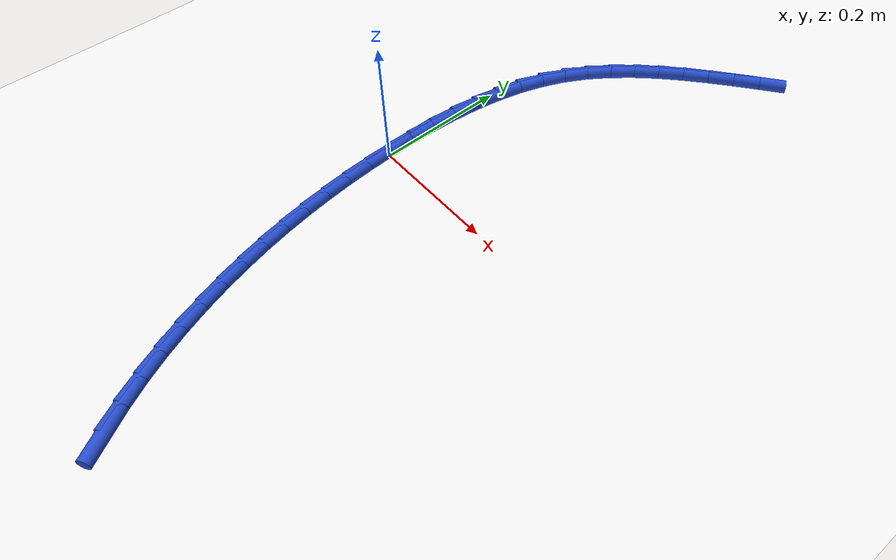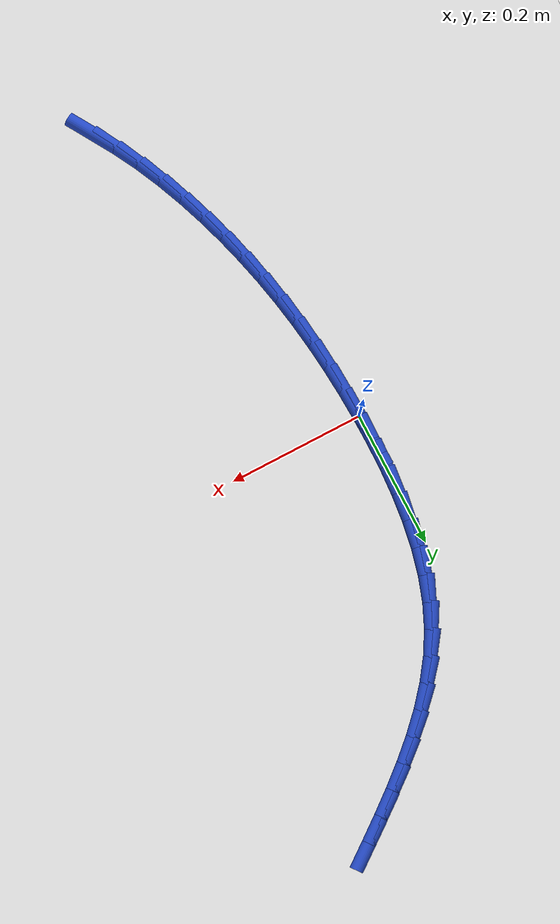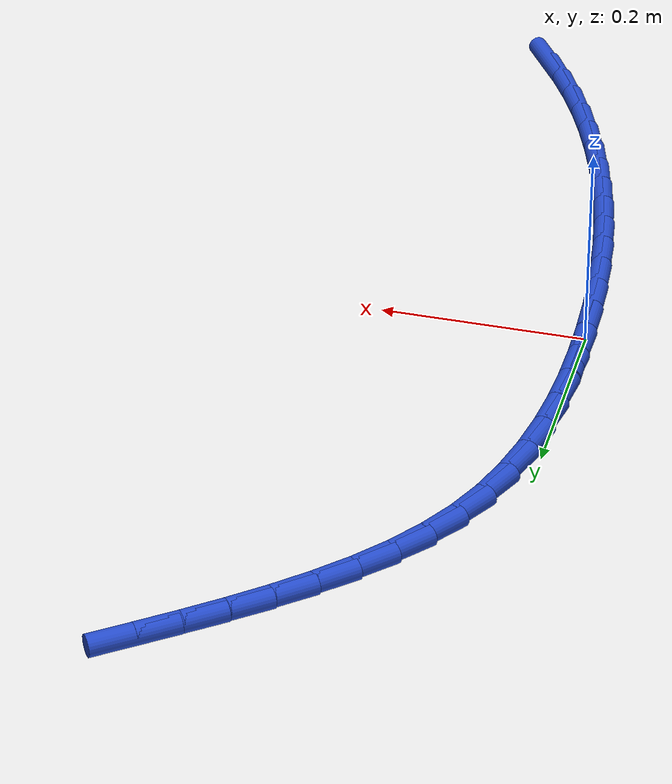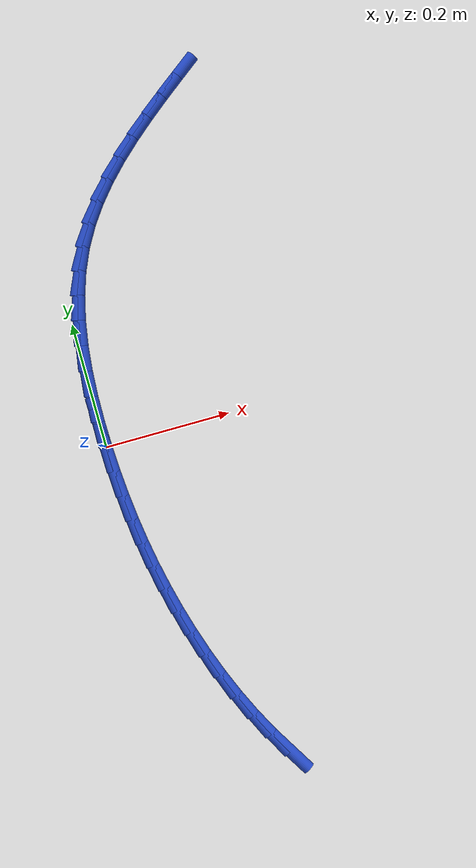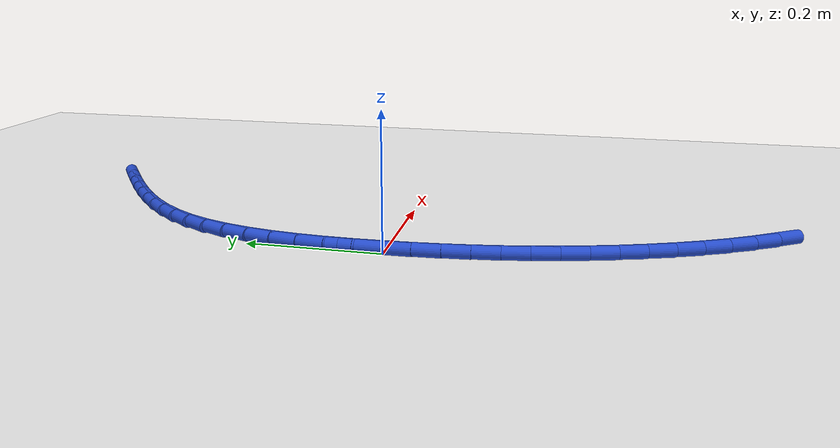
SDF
<sdf version="1.6">
 <world name="default">
  <model name="ground_plane">
   <static>1</static>
   <link name="link">
    <collision name="collision">
     <geometry><plane><normal>0 0 1</normal><size>100 100</size></plane></geometry>
     <surface><friction><ode><mu>100</mu><mu2>50</mu2></ode></friction></surface>
    </collision>
    <visual name="visual">
     <cast_shadows>0</cast_shadows>
     <geometry><plane><normal>0 0 1</normal><size>100 100</size></plane></geometry>
     <material>
      <script><uri>file://media/materials/scripts/gazebo.material</uri><name>Gazebo/WhiteGlow</name></script>
     </material>
    </visual>
   </link>
  </model>
  <model name="line">
   <link name="link_0">
    <pose>-1.1275702593849246e-17 -2.7755575615628914e-17 0.01 0 1.57 -1.5521794826872468</pose>
    <collision name="collision">
     <geometry><cylinder><radius>0.01</radius><length>0.08</length></cylinder></geometry>
    </collision>
    <visual name="visual">
     <material>
      <script><name>Gazebo/Blue</name><uri>file://media/materials/scripts/gazebo.material</uri></script>
     </material>
     <geometry><cylinder><radius>0.01</radius><length>0.08</length></cylinder></geometry>
    </visual>
   </link>
   <link name="link_1">
    <pose>-0.0007580148216579398 0.04071190812936072 0.01 0 1.57 1.555061172492371</pose>
    <collision name="collision">
     <geometry><cylinder><radius>0.01</radius><length>0.08</length></cylinder></geometry>
    </collision>
    <visual name="visual">
     <material>
      <script><name>Gazebo/Blue</name><uri>file://media/materials/scripts/gazebo.material</uri></script>
     </material>
     <geometry><cylinder><radius>0.01</radius><length>0.08</length></cylinder></geometry>
    </visual>
   </link>
   <link name="link_2">
    <pose>-0.00011463356133103357 0.08159667784541513 0.01 0 1.57 1.5131589727793138</pose>
    <collision name="collision">
     <geometry><cylinder><radius>0.01</radius><length>0.08</length></cylinder></geometry>
    </collision>
    <visual name="visual">
     <material>
      <script><name>Gazebo/Blue</name><uri>file://media/materials/scripts/gazebo.material</uri></script>
     </material>
     <geometry><cylinder><radius>0.01</radius><length>0.08</length></cylinder></geometry>
    </visual>
   </link>
   <link name="link_3">
    <pose>0.0022349338899343447 0.122316192299354 0.01 0 1.57 1.4627905685262999</pose>
    <collision name="collision">
     <geometry><cylinder><radius>0.01</radius><length>0.08</length></cylinder></geometry>
    </collision>
    <visual name="visual">
     <material>
      <script><name>Gazebo/Blue</name><uri>file://media/materials/scripts/gazebo.material</uri></script>
     </material>
     <geometry><cylinder><radius>0.01</radius><length>0.08</length></cylinder></geometry>
    </visual>
   </link>
   <link name="link_4">
    <pose>0.006595477641091835 0.16253233464236805 0.01 0 1.57 1.4028352260410355</pose>
    <collision name="collision">
     <geometry><cylinder><radius>0.01</radius><length>0.08</length></cylinder></geometry>
    </collision>
    <visual name="visual">
     <material>
      <script><name>Gazebo/Blue</name><uri>file://media/materials/scripts/gazebo.material</uri></script>
     </material>
     <geometry><cylinder><radius>0.01</radius><length>0.08</length></cylinder></geometry>
    </visual>
   </link>
   <link name="link_5">
    <pose>0.013271787801095069 0.20190698802564813 0.01 0 1.57 1.3320342615172331</pose>
    <collision name="collision">
     <geometry><cylinder><radius>0.01</radius><length>0.08</length></cylinder></geometry>
    </collision>
    <visual name="visual">
     <material>
      <script><name>Gazebo/Blue</name><uri>file://media/materials/scripts/gazebo.material</uri></script>
     </material>
     <geometry><cylinder><radius>0.01</radius><length>0.08</length></cylinder></geometry>
    </visual>
   </link>
   <link name="link_6">
    <pose>0.02256865447889768 0.24010203560038498 0.01 0 1.57 1.2491331722972696</pose>
    <collision name="collision">
     <geometry><cylinder><radius>0.01</radius><length>0.08</length></cylinder></geometry>
    </collision>
    <visual name="visual">
     <material>
      <script><name>Gazebo/Blue</name><uri>file://media/materials/scripts/gazebo.material</uri></script>
     </material>
     <geometry><cylinder><radius>0.01</radius><length>0.08</length></cylinder></geometry>
    </visual>
   </link>
   <link name="link_7">
    <pose>0.034790867783453326 0.27677936051776947 0.01 0 1.57 1.1531461597347854</pose>
    <collision name="collision">
     <geometry><cylinder><radius>0.01</radius><length>0.08</length></cylinder></geometry>
    </collision>
    <visual name="visual">
     <material>
      <script><name>Gazebo/Blue</name><uri>file://media/materials/scripts/gazebo.material</uri></script>
     </material>
     <geometry><cylinder><radius>0.01</radius><length>0.08</length></cylinder></geometry>
    </visual>
   </link>
   <link name="link_8">
    <pose>0.05024316654291145 0.311600889601181 0.01 0 1.57 1.0486844006696596</pose>
    <collision name="collision">
     <geometry><cylinder><radius>0.01</radius><length>0.08</length></cylinder></geometry>
    </collision>
    <visual name="visual">
     <material>
      <script><name>Gazebo/Blue</name><uri>file://media/materials/scripts/gazebo.material</uri></script>
     </material>
     <geometry><cylinder><radius>0.01</radius><length>0.08</length></cylinder></geometry>
    </visual>
   </link>
   <link name="link_9">
    <pose>0.06908655645326786 0.34435095688989487 0.01 0 1.57 0.9527006799595094</pose>
    <collision name="collision">
     <geometry><cylinder><radius>0.01</radius><length>0.08</length></cylinder></geometry>
    </collision>
    <visual name="visual">
     <material>
      <script><name>Gazebo/Blue</name><uri>file://media/materials/scripts/gazebo.material</uri></script>
     </material>
     <geometry><cylinder><radius>0.01</radius><length>0.08</length></cylinder></geometry>
    </visual>
   </link>
   <link name="link_10">
    <pose>0.09102414116933398 0.3752038588012029 0.01 0 1.57 0.8699408163419274</pose>
    <collision name="collision">
     <geometry><cylinder><radius>0.01</radius><length>0.08</length></cylinder></geometry>
    </collision>
    <visual name="visual">
     <material>
      <script><name>Gazebo/Blue</name><uri>file://media/materials/scripts/gazebo.material</uri></script>
     </material>
     <geometry><cylinder><radius>0.01</radius><length>0.08</length></cylinder></geometry>
    </visual>
   </link>
   <link name="link_11">
    <pose>0.1156680396771172 0.404411376879386 0.01 0 1.57 0.8009435129025211</pose>
    <collision name="collision">
     <geometry><cylinder><radius>0.01</radius><length>0.08</length></cylinder></geometry>
    </collision>
    <visual name="visual">
     <material>
      <script><name>Gazebo/Blue</name><uri>file://media/materials/scripts/gazebo.material</uri></script>
     </material>
     <geometry><cylinder><radius>0.01</radius><length>0.08</length></cylinder></geometry>
    </visual>
   </link>
   <link name="link_12">
    <pose>0.1426303709626249 0.4322252926687254 0.01 0 1.57 0.7454520188675524</pose>
    <collision name="collision">
     <geometry><cylinder><radius>0.01</radius><length>0.08</length></cylinder></geometry>
    </collision>
    <visual name="visual">
     <material>
      <script><name>Gazebo/Blue</name><uri>file://media/materials/scripts/gazebo.material</uri></script>
     </material>
     <geometry><cylinder><radius>0.01</radius><length>0.08</length></cylinder></geometry>
    </visual>
   </link>
   <link name="link_13">
    <pose>0.17152325401186455 0.45889738771350214 0.01 0 1.57 0.7028099325533932</pose>
    <collision name="collision">
     <geometry><cylinder><radius>0.01</radius><length>0.08</length></cylinder></geometry>
    </collision>
    <visual name="visual">
     <material>
      <script><name>Gazebo/Blue</name><uri>file://media/materials/scripts/gazebo.material</uri></script>
     </material>
     <geometry><cylinder><radius>0.01</radius><length>0.08</length></cylinder></geometry>
    </visual>
   </link>
   <link name="link_14">
    <pose>0.20195880781084358 0.48467944355799736 0.01 0 1.57 0.6722561646299304</pose>
    <collision name="collision">
     <geometry><cylinder><radius>0.01</radius><length>0.08</length></cylinder></geometry>
    </collision>
    <visual name="visual">
     <material>
      <script><name>Gazebo/Blue</name><uri>file://media/materials/scripts/gazebo.material</uri></script>
     </material>
     <geometry><cylinder><radius>0.01</radius><length>0.08</length></cylinder></geometry>
    </visual>
   </link>
   <link name="link_15">
    <pose>0.23354915134556925 0.509823241746492 0.01 0 1.57 0.6531106419826347</pose>
    <collision name="collision">
     <geometry><cylinder><radius>0.01</radius><length>0.08</length></cylinder></geometry>
    </collision>
    <visual name="visual">
     <material>
      <script><name>Gazebo/Blue</name><uri>file://media/materials/scripts/gazebo.material</uri></script>
     </material>
     <geometry><cylinder><radius>0.01</radius><length>0.08</length></cylinder></geometry>
    </visual>
   </link>
   <link name="link_16">
    <pose>0.2659064036020491 0.534580563823267 0.01 0 1.57 0.6448763631168236</pose>
    <collision name="collision">
     <geometry><cylinder><radius>0.01</radius><length>0.08</length></cylinder></geometry>
    </collision>
    <visual name="visual">
     <material>
      <script><name>Gazebo/Blue</name><uri>file://media/materials/scripts/gazebo.material</uri></script>
     </material>
     <geometry><cylinder><radius>0.01</radius><length>0.08</length></cylinder></geometry>
    </visual>
   </link>
   <link name="link_186">
    <pose>0.14797989665515143 -0.5293010373607788 0.01 0 1.57 -1.0237525638614935</pose>
    <collision name="collision">
     <geometry><cylinder><radius>0.01</radius><length>0.08</length></cylinder></geometry>
    </collision>
    <visual name="visual">
     <material>
      <script><name>Gazebo/Blue</name><uri>file://media/materials/scripts/gazebo.material</uri></script>
     </material>
     <geometry><cylinder><radius>0.01</radius><length>0.08</length></cylinder></geometry>
    </visual>
   </link>
   <link name="link_187">
    <pose>0.12736762250173814 -0.49545744377475015 0.01 0 1.57 -1.0784691999169362</pose>
    <collision name="collision">
     <geometry><cylinder><radius>0.01</radius><length>0.08</length></cylinder></geometry>
    </collision>
    <visual name="visual">
     <material>
      <script><name>Gazebo/Blue</name><uri>file://media/materials/scripts/gazebo.material</uri></script>
     </material>
     <geometry><cylinder><radius>0.01</radius><length>0.08</length></cylinder></geometry>
    </visual>
   </link>
   <link name="link_188">
    <pose>0.1085436427538442 -0.4603630288886478 0.01 0 1.57 -1.1286476116039648</pose>
    <collision name="collision">
     <geometry><cylinder><radius>0.01</radius><length>0.08</length></cylinder></geometry>
    </collision>
    <visual name="visual">
     <material>
      <script><name>Gazebo/Blue</name><uri>file://media/materials/scripts/gazebo.material</uri></script>
     </material>
     <geometry><cylinder><radius>0.01</radius><length>0.08</length></cylinder></geometry>
    </visual>
   </link>
   <link name="link_189">
    <pose>0.09144257521540465 -0.42423972147722716 0.01 0 1.57 -1.1747155862327223</pose>
    <collision name="collision">
     <geometry><cylinder><radius>0.01</radius><length>0.08</length></cylinder></geometry>
    </collision>
    <visual name="visual">
     <material>
      <script><name>Gazebo/Blue</name><uri>file://media/materials/scripts/gazebo.material</uri></script>
     </material>
     <geometry><cylinder><radius>0.01</radius><length>0.08</length></cylinder></geometry>
    </visual>
   </link>
   <link name="link_190">
    <pose>0.07599903769035457 -0.38730945031524433 0.01 0 1.57 -1.2171029306251158</pose>
    <collision name="collision">
     <geometry><cylinder><radius>0.01</radius><length>0.08</length></cylinder></geometry>
    </collision>
    <visual name="visual">
     <material>
      <script><name>Gazebo/Blue</name><uri>file://media/materials/scripts/gazebo.material</uri></script>
     </material>
     <geometry><cylinder><radius>0.01</radius><length>0.08</length></cylinder></geometry>
    </visual>
   </link>
   <link name="link_191">
    <pose>0.06214764798262903 -0.34979414417745475 0.01 0 1.57 -1.2562268261336949</pose>
    <collision name="collision">
     <geometry><cylinder><radius>0.01</radius><length>0.08</length></cylinder></geometry>
    </collision>
    <visual name="visual">
     <material>
      <script><name>Gazebo/Blue</name><uri>file://media/materials/scripts/gazebo.material</uri></script>
     </material>
     <geometry><cylinder><radius>0.01</radius><length>0.08</length></cylinder></geometry>
    </visual>
   </link>
   <link name="link_192">
    <pose>0.049823023896163304 -0.31191573183861493 0.01 0 1.57 -1.2927951192472138</pose>
    <collision name="collision">
     <geometry><cylinder><radius>0.01</radius><length>0.08</length></cylinder></geometry>
    </collision>
    <visual name="visual">
     <material>
      <script><name>Gazebo/Blue</name><uri>file://media/materials/scripts/gazebo.material</uri></script>
     </material>
     <geometry><cylinder><radius>0.01</radius><length>0.08</length></cylinder></geometry>
    </visual>
   </link>
   <link name="link_193">
    <pose>0.03896240708782882 -0.27386057998688784 0.01 0 1.57 -1.328527015512741</pose>
    <collision name="collision">
     <geometry><cylinder><radius>0.01</radius><length>0.08</length></cylinder></geometry>
    </collision>
    <visual name="visual">
     <material>
      <script><name>Gazebo/Blue</name><uri>file://media/materials/scripts/gazebo.material</uri></script>
     </material>
     <geometry><cylinder><radius>0.01</radius><length>0.08</length></cylinder></geometry>
    </visual>
   </link>
   <link name="link_194">
    <pose>0.02951624438006434 -0.2356360806298385 0.01 0 1.57 -1.3637004028673114</pose>
    <collision name="collision">
     <geometry><cylinder><radius>0.01</radius><length>0.08</length></cylinder></geometry>
    </collision>
    <visual name="visual">
     <material>
      <script><name>Gazebo/Blue</name><uri>file://media/materials/scripts/gazebo.material</uri></script>
     </material>
     <geometry><cylinder><radius>0.01</radius><length>0.08</length></cylinder></geometry>
    </visual>
   </link>
   <link name="link_195">
    <pose>0.021439127629915716 -0.19719344652902368 0.01 0 1.57 -1.3980695277089592</pose>
    <collision name="collision">
     <geometry><cylinder><radius>0.01</radius><length>0.08</length></cylinder></geometry>
    </collision>
    <visual name="visual">
     <material>
      <script><name>Gazebo/Blue</name><uri>file://media/materials/scripts/gazebo.material</uri></script>
     </material>
     <geometry><cylinder><radius>0.01</radius><length>0.08</length></cylinder></geometry>
    </visual>
   </link>
   <link name="link_196">
    <pose>0.014685650173285507 -0.1584838704024872 0.01 0 1.57 -1.4314063737695757</pose>
    <collision name="collision">
     <geometry><cylinder><radius>0.01</radius><length>0.08</length></cylinder></geometry>
    </collision>
    <visual name="visual">
     <material>
      <script><name>Gazebo/Blue</name><uri>file://media/materials/scripts/gazebo.material</uri></script>
     </material>
     <geometry><cylinder><radius>0.01</radius><length>0.08</length></cylinder></geometry>
    </visual>
   </link>
   <link name="link_197">
    <pose>0.009210405346076275 -0.11945854496827286 0.01 0 1.57 -1.4635066404783938</pose>
    <collision name="collision">
     <geometry><cylinder><radius>0.01</radius><length>0.08</length></cylinder></geometry>
    </collision>
    <visual name="visual">
     <material>
      <script><name>Gazebo/Blue</name><uri>file://media/materials/scripts/gazebo.material</uri></script>
     </material>
     <geometry><cylinder><radius>0.01</radius><length>0.08</length></cylinder></geometry>
    </visual>
   </link>
   <link name="link_198">
    <pose>0.00496798648419057 -0.08006866294442433 0.01 0 1.57 -1.4941939880350306</pose>
    <collision name="collision">
     <geometry><cylinder><radius>0.01</radius><length>0.08</length></cylinder></geometry>
    </collision>
    <visual name="visual">
     <material>
      <script><name>Gazebo/Blue</name><uri>file://media/materials/scripts/gazebo.material</uri></script>
     </material>
     <geometry><cylinder><radius>0.01</radius><length>0.08</length></cylinder></geometry>
    </visual>
   </link>
   <link name="link_199">
    <pose>0.0019129869235309485 -0.04026541704898543 0.01 0 1.57 -1.5233225959122516</pose>
    <collision name="collision">
     <geometry><cylinder><radius>0.01</radius><length>0.08</length></cylinder></geometry>
    </collision>
    <visual name="visual">
     <material>
      <script><name>Gazebo/Blue</name><uri>file://media/materials/scripts/gazebo.material</uri></script>
     </material>
     <geometry><cylinder><radius>0.01</radius><length>0.08</length></cylinder></geometry>
    </visual>
   </link>
   <link name="link_200">
    <pose>-2.5587171270657905e-17 6.938893903907228e-17 0.01 0 1.57 -1.5507780812290655</pose>
    <collision name="collision">
     <geometry><cylinder><radius>0.01</radius><length>0.08</length></cylinder></geometry>
    </collision>
    <visual name="visual">
     <material>
      <script><name>Gazebo/Blue</name><uri>file://media/materials/scripts/gazebo.material</uri></script>
     </material>
     <geometry><cylinder><radius>0.01</radius><length>0.08</length></cylinder></geometry>
    </visual>
   </link>
   <link name="link_201">
    <pose>-0.0008163809504998054 0.040776395484489344 0.01 0 1.57 -1.5507780812290652</pose>
    <collision name="collision">
     <geometry><cylinder><radius>0.01</radius><length>0.08</length></cylinder></geometry>
    </collision>
    <visual name="visual">
     <material>
      <script><name>Gazebo/Blue</name><uri>file://media/materials/scripts/gazebo.material</uri></script>
     </material>
     <geometry><cylinder><radius>0.01</radius><length>0.08</length></cylinder></geometry>
    </visual>
   </link>
  </model>
 </world>
</sdf>
